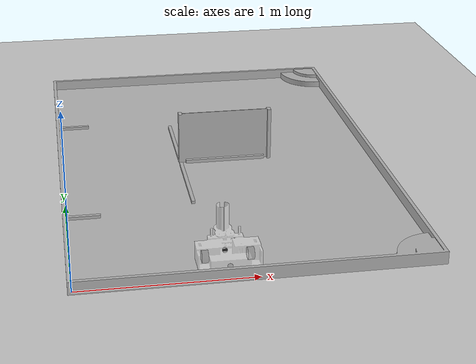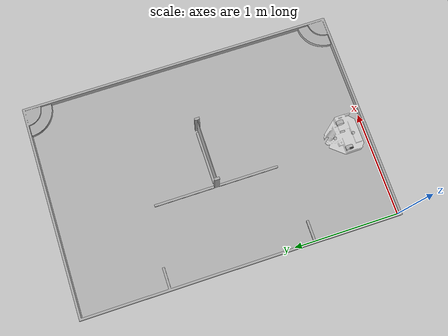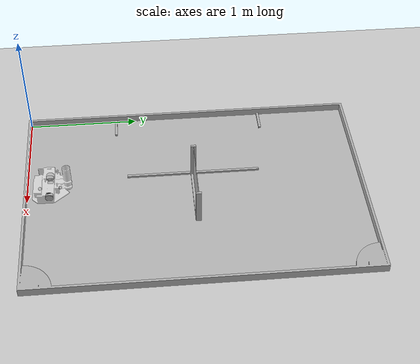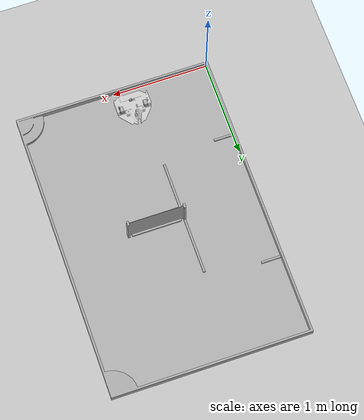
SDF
<?xml version="1.0" ?>
<sdf version='1.5'>
  <world name='default'>
    <scene>
      <sky>
        <clouds>
          <speed>12</speed>
        </clouds>
      </sky>
      <ambient>0.4 0.4 0.4 1</ambient>
      <background>0.7 0.7 0.7 1</background>
      <shadows>1</shadows>
    </scene>
    <!-- A global light source -->
    <include>
      <name>soleil</name>
      <uri>model://sun</uri>
    </include>
    <!-- Ground -->
    <include>
      <name>terre</name>
      <uri>model://ground_plane</uri>
    </include>
    <!-- Beachbots field -->
    <include>
      <name>arene</name>
      <uri>model://beachbots</uri>
    </include>

    <!-- Rosebot -->
    <include>
		<name>rosebot1</name>
		<pose>.85 .2 0 0 0 1.5707</pose>
		<uri>model://rosebot</uri>
    </include>

    <physics type='ode'>
      <max_step_size>0.001</max_step_size>
      <real_time_factor>1</real_time_factor>
      <real_time_update_rate>1000</real_time_update_rate>
      <gravity>0 0 -9.8</gravity>
      <magnetic_field>5.5645e-06 2.28758e-05 -4.23884e-05</magnetic_field>
    </physics>
    <scene>
      <ambient>0.4 0.4 0.4 1</ambient>
      <background>0.7 0.7 0.7 1</background>
      <shadows>1</shadows>
    </scene>
    <gui fullscreen='0'>
      <camera name='user_camera'>
        <pose>1 1.5 3 0 1.57 3.14</pose>
        <view_controller>orbit</view_controller>
      </camera>
    </gui>

  </world>
</sdf>

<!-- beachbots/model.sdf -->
<sdf version="1.5">
  <model name="arene">
    <static>true</static>
    <link name="sol">
      <pose>1 1.5 0.005 0 0 0</pose>
      <collision name="collision">
        <geometry>
          <plane>
            <normal>0 0 0</normal>
            <size>2.0 3.0</size>
          </plane>
        </geometry>
        <surface>
          <friction>
            <ode>
              <mu>100</mu>
              <mu2>50</mu2>
            </ode>
          </friction>
          <contact>
           <ode/>
          </contact>
          <bounce/>
        </surface>
      </collision>
      <visual name="fond">
	    <pose>0 0 0 0 0 0</pose>
 		<cast_shadows>false</cast_shadows>
        <geometry>
          <plane>
            <normal>0 0 1</normal>
            <size>2. 3.</size>
          </plane>
        </geometry>
        <material>
          <script>
            <uri>model://beachbots/materials/scripts/</uri>
            <uri>model://beachbots/materials/textures/</uri>
            <name>Beachbots/Floor</name>
          </script>
        </material>
      </visual>
    </link>
    <!-- Beachbots Arena in 3D -->
      <link name="table">
      	<pose>1.19 1.645 .995 1.5707 0 1.5707</pose>
        <collision name="collision">
          <geometry>
            <mesh>
				<scale>0.001 0.001 0.001</scale>
				<uri>model://beachbots/meshes/table_collision.dae</uri>
            </mesh>
          </geometry>
	<surface>
	  <friction>
	    <ode>
	      <mu>100</mu>
	      <mu2>50</mu2>
	    </ode>
	  </friction>
	</surface>
	</collision>
	<visual name="visual">
      <geometry>
        <mesh>
		  <scale>0.001 0.001 0.001</scale>
			<uri>model://beachbots/meshes/table.dae</uri>
    	</mesh>
      </geometry>
    </visual>
   </link>
  </model>
 </sdf>

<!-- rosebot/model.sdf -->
<sdf version="1.5">
  <model name="Rosebot">
    <link name="chassis">
      <pose>0 0 .005 0 0 0</pose>
      <inertial>
        <mass>6.</mass>
        <inertia>
          <ixx>1</ixx>
          <iyy>1</iyy>
          <izz>0.8</izz>
          <ixy>0</ixy>
          <ixz>0</ixz>
          <iyz>0</iyz>
        </inertia>
      </inertial>
      <collision name="chassis_collision">
        <geometry>
	      <mesh>
		    <scale>0.001 0.001 0.001</scale>
		    <!-- decommenter la pose si utilisation de base.dae (+3cm) -->
		    <uri>model://rosebot/meshes/assemblage.dae</uri>
	      </mesh>
        </geometry>
      </collision>
      <visual name="chassis_visual">
  	 	<transparency>.2</transparency>
        <geometry>
	      <mesh>
		   <scale>0.001 0.001 0.001</scale>
		    <uri>model://rosebot/meshes/assemblage.dae</uri>
	      </mesh>
        </geometry>
        <material>
          <script>
            <uri>file://media/materials/scripts/gazebo.material</uri>
            <name>Gazebo/White</name>
          </script>
        </material>
      </visual>
    </link>
    <link name="roue_folle_avant">
	  <pose>0.09 0 .015 0 0 0</pose>
      <inertial>
        <mass>.13</mass>
        <inertia>
          <ixx>1</ixx>
          <iyy>1</iyy>
          <izz>1</izz>
          <ixy>0</ixy>
          <ixz>0</ixz>
          <iyz>0</iyz>
        </inertia>
      </inertial>
	  <collision name="castor_collision">
	    <geometry>
	      <sphere>
	        <radius>0.015</radius>
	      </sphere>
	    </geometry>
	    <surface>
	      <friction>
	        <ode>
	          <mu>0</mu>
	          <mu2>0</mu2>
	          <slip1>1.0</slip1>
	          <slip2>1.0</slip2>
	        </ode>
	      </friction>
	    </surface>
	  </collision>
	  <visual name="castor_visual">
	    <geometry>
	      <sphere>
	        <radius>0.015</radius>
	      </sphere>
	    </geometry>
	    <material>
	      <script>
	        <uri>file://media/materials/scripts/gazebo.material</uri>
	        <name>Gazebo/FlatBlack</name>
	      </script>
	    </material>
	  </visual>
    </link>
	<link name="roue_folle_arriere">
	  <pose>-0.09 0 .015 0 0 0</pose>
      <inertial>
        <mass>.13</mass>
        <inertia>
          <ixx>1</ixx>
          <iyy>1</iyy>
          <izz>1</izz>
          <ixy>0</ixy>
          <ixz>0</ixz>
          <iyz>0</iyz>
        </inertia>
      </inertial>
	  <collision name="castor_collision">
	    <geometry>
	      <sphere>
	        <radius>0.015</radius>
	      </sphere>
	    </geometry>
	    <surface>
	      <friction>
	        <ode>
	          <mu>0</mu>
	          <mu2>0</mu2>
	          <slip1>1.0</slip1>
	          <slip2>1.0</slip2>
	        </ode>
	      </friction>
	    </surface>
	  </collision>
	  <visual name="castor_visual">
	    <geometry>
	      <sphere>
	        <radius>0.015</radius>
	      </sphere>
	    </geometry>
	    <material>
	      <script>
	        <uri>file://media/materials/scripts/gazebo.material</uri>
	        <name>Gazebo/FlatBlack</name>
	      </script>
	    </material>
	  </visual>
    </link>
    <link name="right_wheel">
      <pose>0.0 -.126 0.035 0 1.5707 1.5707</pose>
      <inertial>
        <mass>.15</mass>
        <inertia>
          <ixx>0.0051</ixx>
          <iyy>0.0051</iyy>
          <izz>0.0090</izz>
          <ixy>0</ixy>
          <ixz>0</ixz>
          <iyz>0</iyz>
        </inertia>
      </inertial>
      <collision name="collision">
        <geometry>
          <cylinder>
            <radius>0.035</radius>
            <length>0.036</length>
          </cylinder>
        </geometry>
        <surface>
          <friction>
            <ode>
              <mu>100000.0</mu>
              <mu2>100000.0</mu2>
              <slip1>0.0</slip1>
              <slip2>0.0</slip2>
            </ode>
          </friction>
        </surface>
      </collision>
      <visual name="visual">
        <geometry>
          <cylinder>
            <radius>0.035</radius>
            <length>0.036</length>
          </cylinder>
        </geometry>
        <material>
          <script>
            <uri>file://media/materials/scripts/gazebo.material</uri>
            <name>Gazebo/FlatBlack</name>
          </script>
        </material>
      </visual>
    </link>
    <link name="left_wheel">
      <pose>0.0 .126 0.035 0 1.5707 1.5707</pose>
      <inertial>
        <mass>.15</mass>
        <inertia>
          <ixx>0.0051</ixx>
          <iyy>0.0051</iyy>
          <izz>0.0090</izz>
          <ixy>0</ixy>
          <ixz>0</ixz>
          <iyz>0</iyz>
        </inertia>
      </inertial>
      <collision name="collision">
        <geometry>
          <cylinder>
            <radius>0.035</radius>
            <length>0.036</length>
          </cylinder>
        </geometry>
        <surface>
          <friction>
            <ode>
              <mu>100000.0</mu>
              <mu2>100000.0</mu2>
              <slip1>0.0</slip1>
              <slip2>0.0</slip2>
            </ode>
          </friction>
        </surface>
      </collision>
      <visual name="visual">
        <geometry>
          <cylinder>
            <radius>0.035</radius>
            <length>0.036</length>
          </cylinder>
        </geometry>
        <material>
          <script>
            <uri>file://media/materials/scripts/gazebo.material</uri>
            <name>Gazebo/FlatBlack</name>
          </script>
        </material>
      </visual>
    </link>
    <joint name="attache_roue_folle_avant" type="revolute">
      <child>roue_folle_avant</child>
      <parent>chassis</parent>
      <axis>
        <xyz>0 1 0</xyz>
        <use_parent_model_frame>true</use_parent_model_frame>
	   <limit>
		<upper>0</upper>
		<lower>0</lower>
	   </limit>
      </axis>
    </joint>
    <joint name="attache_roue_folle_arriere" type="revolute">
      <child>roue_folle_arriere</child>
      <parent>chassis</parent>
      <axis>
        <xyz>0 1 0</xyz>
        <use_parent_model_frame>true</use_parent_model_frame>
	   <limit>
		<upper>0</upper>
		<lower>0</lower>
	   </limit>
      </axis>
    </joint>
    <joint name="left_wheel_hinge" type="revolute">
      <child>left_wheel</child>
      <parent>chassis</parent>
      <axis>
        <xyz>0 1 0</xyz>
        <use_parent_model_frame>true</use_parent_model_frame>
      </axis>
    </joint>
    <joint name="right_wheel_hinge" type="revolute">
      <child>right_wheel</child>
      <parent>chassis</parent>
      <axis>
        <xyz>0 1 0</xyz>
        <use_parent_model_frame>true</use_parent_model_frame>
      </axis>
    </joint>
	<plugin name="rosebot_gazebo" filename="libgazebo_ros_diff_drive.so">
		<leftJoint>left_wheel_hinge</leftJoint>
		<rightJoint>right_wheel_hinge</rightJoint>
		<robotBaseFrame>chassis</robotBaseFrame>
		<publishTF>true</publishTF>
		<publishWheelTF>false</publishWheelTF>
	</plugin>

  </model>
</sdf>
